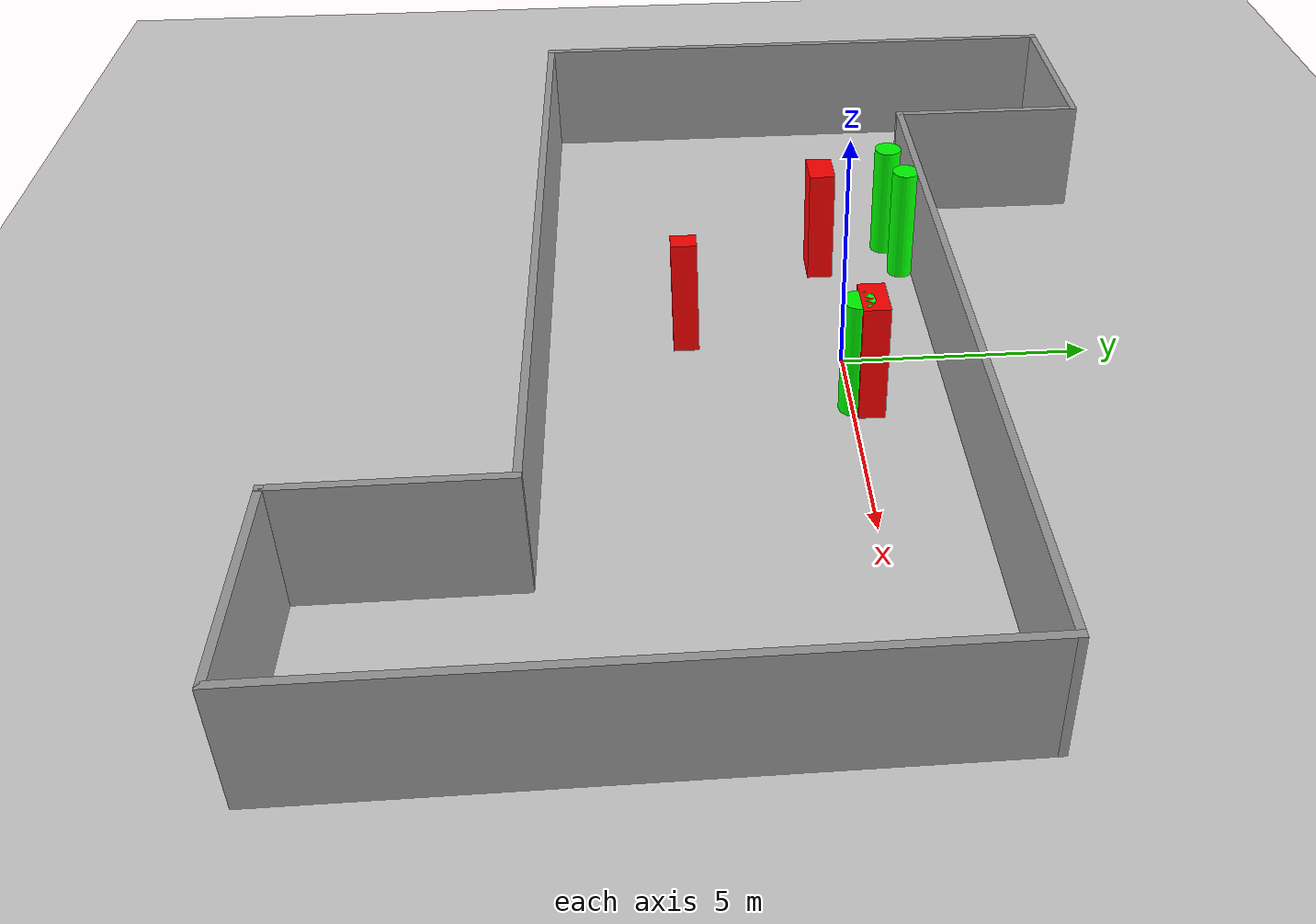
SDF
<sdf version="1.7">
 <world name="default">
  <light name="sun" type="directional">
   <pose>0 0 10 0 -0 0</pose>
   <diffuse>0.8 0.8 0.8 1</diffuse>
   <specular>0.2 0.2 0.2 1</specular>
   <attenuation>
    <range>1000</range>
    <constant>0.9</constant>
    <linear>0.01</linear>
    <quadratic>0.001</quadratic>
   </attenuation>
   <direction>-0.5 0.1 -0.9</direction>
   <spot><inner_angle>0</inner_angle><outer_angle>0</outer_angle><falloff>0</falloff></spot>
  </light>
  <model name="ground_plane">
   <static>1</static>
   <link name="link">
    <collision name="collision">
     <geometry><plane><normal>0 0 1</normal><size>100 100</size></plane></geometry>
     <surface>
      <contact><collide_bitmask>65535</collide_bitmask></contact>
      <friction><ode><mu>100</mu><mu2>50</mu2></ode></friction>
     </surface>
    </collision>
    <visual name="visual">
     <cast_shadows>0</cast_shadows>
     <geometry><plane><normal>0 0 1</normal><size>100 100</size></plane></geometry>
     <material>
      <script><uri>file://media/materials/scripts/gazebo.material</uri><name>Gazebo/Grey</name></script>
     </material>
    </visual>
   </link>
  </model>
  <gravity>0 0 -9.8</gravity>
  <magnetic_field>6e-06 2.3e-05 -4.2e-05</magnetic_field>
  <atmosphere type="adiabatic"/>
  <physics type="ode">
   <max_step_size>0.001</max_step_size>
   <real_time_factor>1</real_time_factor>
   <real_time_update_rate>1000</real_time_update_rate>
  </physics>
  <scene><ambient>0.4 0.4 0.4 1</ambient><background>0.7 0.7 0.7 1</background><shadows>1</shadows></scene>
  <spherical_coordinates>
   <surface_model>EARTH_WGS84</surface_model>
   <latitude_deg>0</latitude_deg>
   <longitude_deg>0</longitude_deg>
   <elevation>0</elevation>
   <heading_deg>0</heading_deg>
  </spherical_coordinates>
  <model name="my_base_walls">
   <link name="Wall_13">
    <collision name="Wall_13_Collision">
     <geometry><box><size>12.15 0.15 2.5</size></box></geometry>
     <pose>0 0 1.25 0 -0 0</pose>
    </collision>
    <visual name="Wall_13_Visual">
     <pose>0 0 1.25 0 -0 0</pose>
     <geometry><box><size>12.15 0.15 2.5</size></box></geometry>
     <material>
      <script><uri>file://media/materials/scripts/gazebo.material</uri><name>Gazebo/Grey</name></script>
      <ambient>1 1 1 1</ambient>
     </material>
     <meta><layer>0</layer></meta>
    </visual>
    <pose>10 -2 0 0 -0 1.5708</pose>
   </link>
   <link name="Wall_15">
    <collision name="Wall_15_Collision">
     <geometry><box><size>16.15 0.15 2.5</size></box></geometry>
     <pose>0 0 1.25 0 -0 0</pose>
    </collision>
    <visual name="Wall_15_Visual">
     <pose>0 0 1.25 0 -0 0</pose>
     <geometry><box><size>16.15 0.15 2.5</size></box></geometry>
     <material>
      <script><uri>file://media/materials/scripts/gazebo.material</uri><name>Gazebo/Grey</name></script>
      <ambient>1 1 1 1</ambient>
     </material>
     <meta><layer>0</layer></meta>
    </visual>
    <pose>2 4 0 0 -0 3.14159</pose>
   </link>
   <link name="Wall_17">
    <collision name="Wall_17_Collision">
     <geometry><box><size>4.15 0.15 2.5</size></box></geometry>
     <pose>0 0 1.25 0 -0 0</pose>
    </collision>
    <visual name="Wall_17_Visual">
     <pose>0 0 1.25 0 -0 0</pose>
     <geometry><box><size>4.15 0.15 2.5</size></box></geometry>
     <material>
      <script><uri>file://media/materials/scripts/gazebo.material</uri><name>Gazebo/Grey</name></script>
      <ambient>1 1 1 1</ambient>
     </material>
     <meta><layer>0</layer></meta>
    </visual>
    <pose>6 -6 0 0 -0 -1.5708</pose>
   </link>
   <link name="Wall_19">
    <collision name="Wall_19_Collision">
     <geometry><box><size>12.15 0.15 2.5</size></box></geometry>
     <pose>0 0 1.25 0 -0 0</pose>
    </collision>
    <visual name="Wall_19_Visual">
     <pose>0 0 1.25 0 -0 0</pose>
     <geometry><box><size>12.15 0.15 2.5</size></box></geometry>
     <material>
      <script><uri>file://media/materials/scripts/gazebo.material</uri><name>Gazebo/Grey</name></script>
      <ambient>1 1 1 1</ambient>
     </material>
     <meta><layer>0</layer></meta>
    </visual>
    <pose>-10 2 0 0 -0 1.5708</pose>
   </link>
   <link name="Wall_21">
    <collision name="Wall_21_Collision">
     <geometry><box><size>4.15 0.15 2.5</size></box></geometry>
     <pose>0 0 1.25 0 -0 0</pose>
    </collision>
    <visual name="Wall_21_Visual">
     <pose>0 0 1.25 0 -0 0</pose>
     <geometry><box><size>4.15 0.15 2.5</size></box></geometry>
     <material>
      <script><uri>file://media/materials/scripts/gazebo.material</uri><name>Gazebo/Grey</name></script>
      <ambient>1 1 1 1</ambient>
     </material>
     <meta><layer>0</layer></meta>
    </visual>
    <pose>-8 8 0 0 -0 0</pose>
   </link>
   <link name="Wall_23">
    <collision name="Wall_23_Collision">
     <geometry><box><size>4.15 0.15 2.5</size></box></geometry>
     <pose>0 0 1.25 0 -0 0</pose>
    </collision>
    <visual name="Wall_23_Visual">
     <pose>0 0 1.25 0 -0 0</pose>
     <geometry><box><size>4.15 0.15 2.5</size></box></geometry>
     <material>
      <script><uri>file://media/materials/scripts/gazebo.material</uri><name>Gazebo/Grey</name></script>
      <ambient>1 1 1 1</ambient>
     </material>
     <meta><layer>0</layer></meta>
    </visual>
    <pose>-6 6 0 0 -0 -1.5708</pose>
   </link>
   <link name="Wall_25">
    <collision name="Wall_25_Collision">
     <geometry><box><size>4.15 0.15 2.5</size></box></geometry>
     <pose>0 0 1.25 0 -0 0</pose>
    </collision>
    <visual name="Wall_25_Visual">
     <pose>0 0 1.25 0 -0 0</pose>
     <geometry><box><size>4.15 0.15 2.5</size></box></geometry>
     <material>
      <script><uri>file://media/materials/scripts/gazebo.material</uri><name>Gazebo/Grey</name></script>
      <ambient>1 1 1 1</ambient>
     </material>
     <meta><layer>0</layer></meta>
    </visual>
    <pose>8 -8 0 0 -0 0</pose>
   </link>
   <link name="Wall_9">
    <collision name="Wall_9_Collision">
     <geometry><box><size>16.15 0.15 2.5</size></box></geometry>
     <pose>0 0 1.25 0 -0 0</pose>
    </collision>
    <visual name="Wall_9_Visual">
     <pose>0 0 1.25 0 -0 0</pose>
     <geometry><box><size>16.15 0.15 2.5</size></box></geometry>
     <material>
      <script><uri>file://media/materials/scripts/gazebo.material</uri><name>Gazebo/Grey</name></script>
      <ambient>1 1 1 1</ambient>
     </material>
     <meta><layer>0</layer></meta>
    </visual>
    <pose>-2 -4 0 0 -0 3.14159</pose>
   </link>
   <static>1</static>
   <pose>-0 -2 0 0 -0 0</pose>
  </model>
  <model name="cylinder1">
   <static>1</static>
   <link name="link">
    <inertial>
     <mass>1</mass>
     <inertia><ixx>0.5</ixx><ixy>0</ixy><ixz>0</ixz><iyy>0.5</iyy><iyz>0</iyz><izz>1</izz></inertia>
    </inertial>
    <collision name="collision">
     <geometry><cylinder><radius>0.31269250915703595</radius><length>2.5</length></cylinder></geometry>
    </collision>
    <visual name="visual">
     <geometry><cylinder><radius>0.31269250915703595</radius><length>2.5</length></cylinder></geometry>
     <material>
      <ambient>0 1 0 1</ambient>
      <diffuse>0 1 0 1</diffuse>
      <specular>0.1 0.1 0.1 1</specular>
      <emissive>0 0 0 0</emissive>
     </material>
    </visual>
   </link>
   <pose>1.4925518580363786 0.04456680851238559 1.25 0 0 0</pose>
  </model>
  <model name="cylinder2">
   <static>1</static>
   <link name="link">
    <inertial>
     <mass>1</mass>
     <inertia><ixx>0.5</ixx><ixy>0</ixy><ixz>0</ixz><iyy>0.5</iyy><iyz>0</iyz><izz>1</izz></inertia>
    </inertial>
    <collision name="collision">
     <geometry><cylinder><radius>0.28212104380464753</radius><length>2.5</length></cylinder></geometry>
    </collision>
    <visual name="visual">
     <geometry><cylinder><radius>0.28212104380464753</radius><length>2.5</length></cylinder></geometry>
     <material>
      <ambient>0 1 0 1</ambient>
      <diffuse>0 1 0 1</diffuse>
      <specular>0.1 0.1 0.1 1</specular>
      <emissive>0 0 0 0</emissive>
     </material>
    </visual>
   </link>
   <pose>-4.321410255738659 1.4750821080710965 1.25 0 0 0</pose>
  </model>
  <model name="cylinder3">
   <static>1</static>
   <link name="link">
    <inertial>
     <mass>1</mass>
     <inertia><ixx>0.5</ixx><ixy>0</ixy><ixz>0</ixz><iyy>0.5</iyy><iyz>0</iyz><izz>1</izz></inertia>
    </inertial>
    <collision name="collision">
     <geometry><cylinder><radius>0.27873439413300316</radius><length>2.5</length></cylinder></geometry>
    </collision>
    <visual name="visual">
     <geometry><cylinder><radius>0.27873439413300316</radius><length>2.5</length></cylinder></geometry>
     <material>
      <ambient>0 1 0 1</ambient>
      <diffuse>0 1 0 1</diffuse>
      <specular>0.1 0.1 0.1 1</specular>
      <emissive>0 0 0 0</emissive>
     </material>
    </visual>
   </link>
   <pose>-3.301018597639599 1.7011558360345536 1.25 0 0 0</pose>
  </model>
  <model name="box1">
   <static>1</static>
   <link name="link">
    <inertial>
     <mass>1</mass>
     <inertia><ixx>0.083</ixx><ixy>0</ixy><ixz>0</ixz><iyy>0.083</iyy><iyz>0</iyz><izz>0.083</izz></inertia>
    </inertial>
    <collision name="collision">
     <geometry><box><size>0.4166921420931181 0.5164830259508687 2.5</size></box></geometry>
    </collision>
    <visual name="visual">
     <geometry><box><size>0.4166921420931181 0.5164830259508687 2.5</size></box></geometry>
     <material>
      <ambient>1 0 0 1</ambient>
      <diffuse>1 0 0 1</diffuse>
      <specular>0.1 0.1 0.1 1</specular>
      <emissive>0 0 0 0</emissive>
     </material>
    </visual>
    <sensor name="my_contact" type="contact">
     <contact><collision>box_collision</collision><topic>__default_topic__</topic></contact>
    </sensor>
   </link>
   <pose>-0.8367668108097011 -3.1192931591133473 1.25 0 0 0</pose>
  </model>
  <model name="box2">
   <static>1</static>
   <link name="link">
    <inertial>
     <mass>1</mass>
     <inertia><ixx>0.083</ixx><ixy>0</ixy><ixz>0</ixz><iyy>0.083</iyy><iyz>0</iyz><izz>0.083</izz></inertia>
    </inertial>
    <collision name="collision">
     <geometry><box><size>0.7958128211114541 0.5366069545666221 2.5</size></box></geometry>
    </collision>
    <visual name="visual">
     <geometry><box><size>0.7958128211114541 0.5366069545666221 2.5</size></box></geometry>
     <material>
      <ambient>1 0 0 1</ambient>
      <diffuse>1 0 0 1</diffuse>
      <specular>0.1 0.1 0.1 1</specular>
      <emissive>0 0 0 0</emissive>
     </material>
    </visual>
    <sensor name="my_contact" type="contact">
     <contact><collision>box_collision</collision><topic>__default_topic__</topic></contact>
    </sensor>
   </link>
   <pose>-3.5685401899436164 -0.0914501508890595 1.25 0 0 0</pose>
  </model>
  <model name="box3">
   <static>1</static>
   <link name="link">
    <inertial>
     <mass>1</mass>
     <inertia><ixx>0.083</ixx><ixy>0</ixy><ixz>0</ixz><iyy>0.083</iyy><iyz>0</iyz><izz>0.083</izz></inertia>
    </inertial>
    <collision name="collision">
     <geometry><box><size>0.9016700150440633 0.5267852669964426 2.5</size></box></geometry>
    </collision>
    <visual name="visual">
     <geometry><box><size>0.9016700150440633 0.5267852669964426 2.5</size></box></geometry>
     <material>
      <ambient>1 0 0 1</ambient>
      <diffuse>1 0 0 1</diffuse>
      <specular>0.1 0.1 0.1 1</specular>
      <emissive>0 0 0 0</emissive>
     </material>
    </visual>
    <sensor name="my_contact" type="contact">
     <contact><collision>box_collision</collision><topic>__default_topic__</topic></contact>
    </sensor>
   </link>
   <pose>1.4168827366270822 0.3416632153848447 1.25 0 0 0</pose>
  </model>
 </world>
</sdf>
